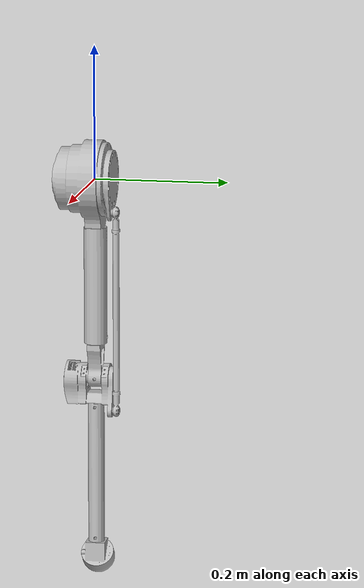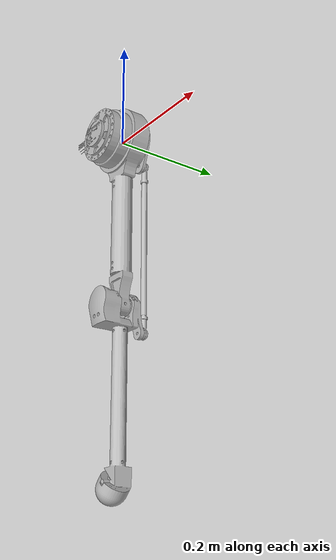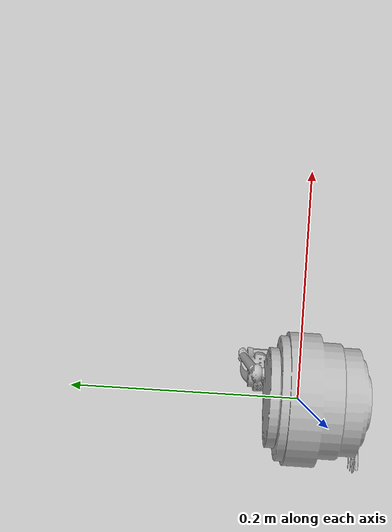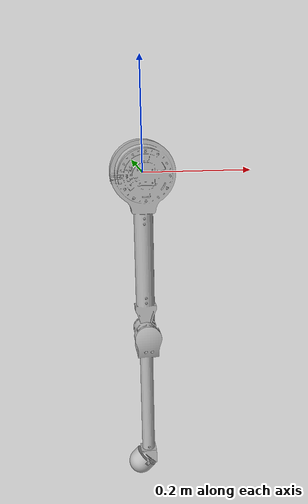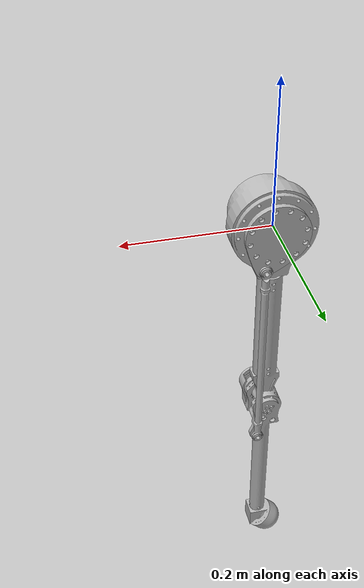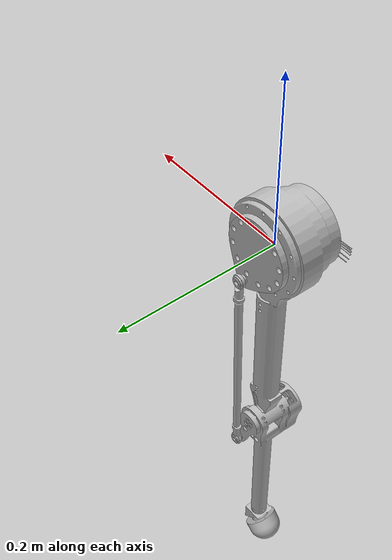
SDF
<sdf version='1.6'>
  <model name='PONGBOT_LEG'>
    <link name='thigh'>
      <pose frame=''>0 0 0 0 -0 0</pose>
      <inertial>
        <pose frame=''>0 -0.0162 -0.0264 0 -0 0</pose>
        <mass>1.8748</mass>
        <inertia>
          <ixx>0.0112</ixx>
          <ixy>0</ixy>
          <ixz>0</ixz>
          <iyy>0.0117</iyy>
          <iyz>-0.0008</iyz>
          <izz>0.0017</izz>
        </inertia>
      </inertial>
      <collision name='thigh_collision'>
        <pose frame=''>0 0 0 0 -0 0</pose>
        <geometry>
          <mesh>
            <scale>1 1 1</scale>
            <uri>model://PONGBOT_LEG/meshes/thigh.STL</uri>
          </mesh>
        </geometry>
      </collision>
      <visual name='thigh_visual'>
        <pose frame=''>0 0 0 0 -0 0</pose>
        <geometry>
          <mesh>
            <scale>1 1 1</scale>
            <uri>model://PONGBOT_LEG/meshes/thigh.STL</uri>
          </mesh>
        </geometry>
      </visual>
    </link>
    <link name='rotator1'>
      <pose frame=''>0 0.02765 0 0 -0 0</pose>
      <inertial>
        <pose frame=''>0.0021 -0.0028 -0.0058 0 -0 0</pose>
        <mass>0.072</mass>
        <inertia>
          <ixx>0.0001</ixx>
          <ixy>0</ixy>
          <ixz>0</ixz>
          <iyy>0.0001</iyy>
          <iyz>0</iyz>
          <izz>0</izz>
        </inertia>
      </inertial>
      <collision name='rotator1_collision'>
        <pose frame=''>0 0 0 0 -0 0</pose>
        <geometry>
          <mesh>
            <scale>1 1 1</scale>
            <uri>model://PONGBOT_LEG/meshes/rotator1.STL</uri>
          </mesh>
        </geometry>
      </collision>
      <visual name='rotator1_visual'>
        <pose frame=''>0 0 0 0 -0 0</pose>
        <geometry>
          <mesh>
            <scale>1 1 1</scale>
            <uri>model://PONGBOT_LEG/meshes/rotator1.STL</uri>
          </mesh>
        </geometry>
      </visual>
    </link>
    <joint name='rotator1_joint' type='revolute'>
      <child>rotator1</child>
      <parent>thigh</parent>
      <axis>
        <xyz>0 1 0</xyz>
        <limit>
          <lower>-3.14</lower>
          <upper>0</upper>
        </limit>
        <dynamics>
          <spring_reference>0</spring_reference>
          <spring_stiffness>0</spring_stiffness>
        </dynamics>
        <use_parent_model_frame>1</use_parent_model_frame>
      </axis>
    </joint>
    <link name='rotator2'>
      <pose frame=''>0.017101 0.0345 -0.046985 0 -0 0</pose>
      <inertial>
        <pose frame=''>0 0 -0.1525 0 -0 0</pose>
        <mass>0.2047</mass>
        <inertia>
          <ixx>0.0018</ixx>
          <ixy>0</ixy>
          <ixz>0</ixz>
          <iyy>0.0018</iyy>
          <iyz>0</iyz>
          <izz>0</izz>
        </inertia>
      </inertial>
      <collision name='rotator2_collision'>
        <pose frame=''>0 0 0 0 -0 0</pose>
        <geometry>
          <mesh>
            <scale>1 1 1</scale>
            <uri>model://PONGBOT_LEG/meshes/rotator2.STL</uri>
          </mesh>
        </geometry>
      </collision>
      <visual name='rotator2_visual'>
        <pose frame=''>0 0 0 0 -0 0</pose>
        <geometry>
          <mesh>
            <scale>1 1 1</scale>
            <uri>model://PONGBOT_LEG/meshes/rotator2.STL</uri>
          </mesh>
        </geometry>
      </visual>
    </link>
    <joint name='rotator2_joint' type='revolute'>
      <child>rotator2</child>
      <parent>rotator1</parent>
      <axis>
        <xyz>0 1 0</xyz>
        <limit>
          <lower>-3.14</lower>
          <upper>3.14</upper>
        </limit>
        <dynamics>
          <spring_reference>0</spring_reference>
          <spring_stiffness>0</spring_stiffness>
        </dynamics>
        <use_parent_model_frame>1</use_parent_model_frame>
      </axis>
    </joint>
    <link name='rotator3'>
      <pose frame=''>0.017101 0.0345 -0.351985 0 -0 0</pose>
      <inertial>
        <pose frame=''>-0.0183 -0.0326 -0.0427 0 -0 0</pose>
        <mass>0.402</mass>
        <inertia>
          <ixx>0.0052</ixx>
          <ixy>0</ixy>
          <ixz>0.0002</ixz>
          <iyy>0.0051</iyy>
          <iyz>0</iyz>
          <izz>0.0002</izz>
        </inertia>
      </inertial>
      <collision name='rotator3_collision'>
        <pose frame=''>0 0 0 0 -0 0</pose>
        <geometry>
          <mesh>
            <scale>1 1 1</scale>
            <uri>model://PONGBOT_LEG/meshes/rotator3.STL</uri>
          </mesh>
        </geometry>
      </collision>
      <visual name='rotator3_visual'>
        <pose frame=''>0 0 0 0 -0 0</pose>
        <geometry>
          <mesh>
            <scale>1 1 1</scale>
            <uri>model://PONGBOT_LEG/meshes/rotator3.STL</uri>
          </mesh>
        </geometry>
      </visual>
    </link>
    <joint name='rotator3_joint' type='revolute'>
      <child>rotator3</child>
      <parent>rotator2</parent>
      <axis>
        <xyz>0 1 0</xyz>
        <limit>
          <lower>-3.14</lower>
          <upper>3.14</upper>
        </limit>
        <dynamics>
          <spring_reference>0</spring_reference>
          <spring_stiffness>0</spring_stiffness>
        </dynamics>
        <use_parent_model_frame>1</use_parent_model_frame>
      </axis>
    </joint>

    <joint name='thigh_calf_joint' type='revolute'>
      <child>rotator3</child>
      <parent>thigh</parent>
      <axis>
        <xyz>0 1 0</xyz>
        <limit>
          <lower>-3.14</lower>
          <upper>3.14</upper>
        </limit>
        <dynamics>
          <spring_reference>0</spring_reference>
          <spring_stiffness>0</spring_stiffness>
        </dynamics>
        <use_parent_model_frame>1</use_parent_model_frame>
      </axis>
      <pose frame=''>-0.0171 -0.0345 0.04698 0 -0 0</pose>
    </joint>
  </model>
</sdf>
